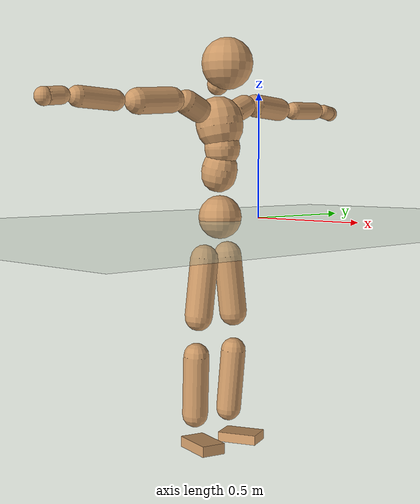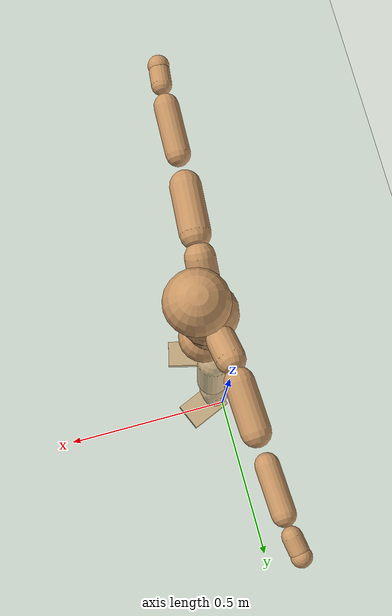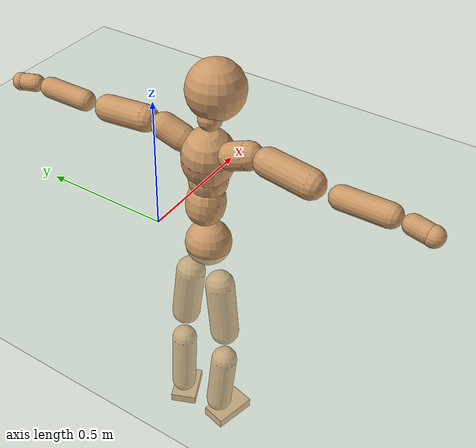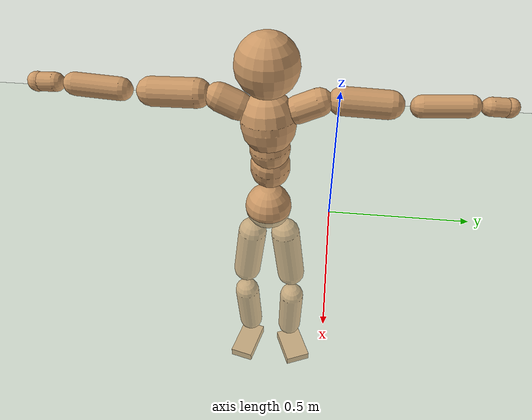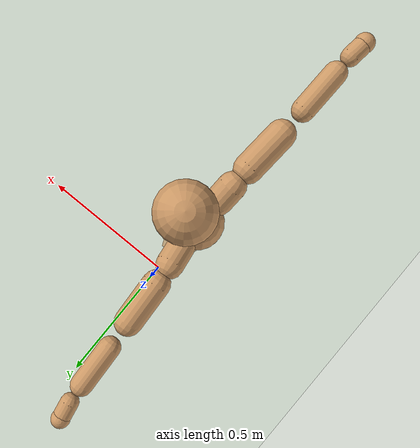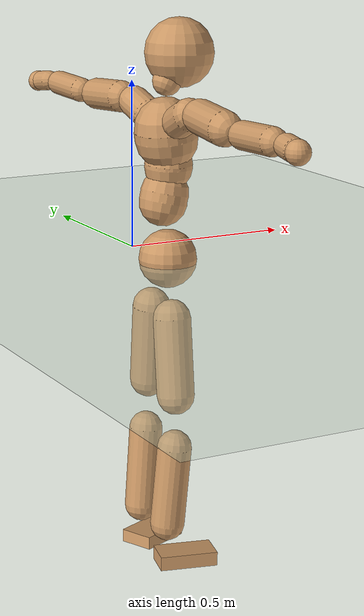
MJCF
<mujoco model="humanoid">
  <compiler coordinate="local" angle="radian"/>
  <default>
    <joint damping="0.0" armature="0.01" stiffness="0.0" limited="true"/>
    <geom conaffinity="1" condim="3" contype="7" margin="0.001" rgba="0.8 0.6 .4 1"/>
  </default>
  <asset>
    <texture type="skybox" builtin="gradient" rgb1=".4 .5 .6" rgb2="0 0 0" width="100" height="100"/>
    <texture builtin="flat" height="1278" mark="cross" markrgb="1 1 1" name="texgeom" random="0.01" rgb1="0.8 0.6 0.4" rgb2="0.8 0.6 0.4" type="cube" width="127"/>
    <texture builtin="checker" height="100" name="texplane" rgb1="0 0 0" rgb2="0.8 0.8 0.8" type="2d" width="100"/>
    <material name="MatPlane" reflectance="0.5" shininess="1" specular="1" texrepeat="60 60" texture="texplane"/>
    <material name="geom" texture="texgeom" texuniform="true"/>
  </asset>
  <worldbody>
    <light cutoff="100" diffuse="1 1 1" dir="-0 0 -1.3" directional="true" exponent="1" pos="0 0 1.3" specular=".1 .1 .1"/>
    <geom conaffinity="1" condim="3" name="floor" pos="0 0 0" rgba="0.8 0.9 0.8 1" size="100 100 .2" type="plane" material="MatPlane"/>
    <body name="Pelvis" pos="0.0017 -0.2226 0.0114">
      <freejoint name="Pelvis"/>
      <geom type="sphere" contype="1" conaffinity="1" density="500" size="0.0847" pos="0.0000 0.0000 0.0000" name="Pelvis"/>
      <body name="L_Hip" pos="-0.0225 0.0537 -0.0774">
        <joint name="L_Hip_x" type="hinge" pos="0 0 0" axis="1 0 0" stiffness="800" damping="80" armature="0.02" range="-180.0000 180.0000"/>
        <joint name="L_Hip_y" type="hinge" pos="0 0 0" axis="0 1 0" stiffness="800" damping="80" armature="0.02" range="-180.0000 180.0000"/>
        <joint name="L_Hip_z" type="hinge" pos="0 0 0" axis="0 0 1" stiffness="800" damping="80" armature="0.02" range="-180.0000 180.0000"/>
        <geom type="capsule" contype="1" conaffinity="1" density="500" fromto="0.0014 0.0093 -0.0767 0.0054 0.0371 -0.3069" size="0.0549" name="L_Hip"/>
        <body name="L_Knee" pos="0.0068 0.0464 -0.3837">
          <joint name="L_Knee_x" type="hinge" pos="0 0 0" axis="1 0 0" stiffness="800" damping="80" armature="0.02" range="-180.0000 180.0000"/>
          <joint name="L_Knee_y" type="hinge" pos="0 0 0" axis="0 1 0" stiffness="800" damping="80" armature="0.02" range="-180.0000 180.0000"/>
          <joint name="L_Knee_z" type="hinge" pos="0 0 0" axis="0 0 1" stiffness="800" damping="80" armature="0.02" range="-180.0000 180.0000"/>
          <geom type="capsule" contype="1" conaffinity="1" density="500" fromto="-0.0066 -0.0023 -0.0801 -0.0265 -0.0092 -0.3204" size="0.0496" name="L_Knee"/>
          <body name="L_Ankle" pos="-0.0331 -0.0115 -0.4005">
            <joint name="L_Ankle_x" type="hinge" pos="0 0 0" axis="1 0 0" stiffness="800" damping="80" armature="0.02" range="-180.0000 180.0000"/>
            <joint name="L_Ankle_y" type="hinge" pos="0 0 0" axis="0 1 0" stiffness="800" damping="80" armature="0.02" range="-180.0000 180.0000"/>
            <joint name="L_Ankle_z" type="hinge" pos="0 0 0" axis="0 0 1" stiffness="800" damping="80" armature="0.02" range="-180.0000 180.0000"/>
            <geom type="box" contype="1" conaffinity="1" density="500" pos="0.0563 0.0242 -0.0288" size="0.0789 0.0522 0.019" quat="0.9795 0.0000 0.0000 0.2012" name="L_Ankle"/>
            <body name="L_Toe" pos="0.1127 0.0483 -0.0576">
              <joint name="L_Toe_x" type="hinge" pos="0 0 0" axis="1 0 0" stiffness="500" damping="50" armature="0.02" range="-180.0000 180.0000"/>
              <joint name="L_Toe_y" type="hinge" pos="0 0 0" axis="0 1 0" stiffness="500" damping="50" armature="0.02" range="-180.0000 180.0000"/>
              <joint name="L_Toe_z" type="hinge" pos="0 0 0" axis="0 0 1" stiffness="500" damping="50" armature="0.02" range="-180.0000 180.0000"/>
              <geom type="box" contype="1" conaffinity="1" density="500" pos="0.0000 0.0000 0.0308" size="0.001 0.0024 0.001" quat="0.9787 0.0000 0.0000 0.2053" name="L_Toe"/>
            </body>
          </body>
        </body>
      </body>
      <body name="R_Hip" pos="-0.0202 -0.0558 -0.0848">
        <joint name="R_Hip_x" type="hinge" pos="0 0 0" axis="1 0 0" stiffness="800" damping="80" armature="0.02" range="-180.0000 180.0000"/>
        <joint name="R_Hip_y" type="hinge" pos="0 0 0" axis="0 1 0" stiffness="800" damping="80" armature="0.02" range="-180.0000 180.0000"/>
        <joint name="R_Hip_z" type="hinge" pos="0 0 0" axis="0 0 1" stiffness="800" damping="80" armature="0.02" range="-180.0000 180.0000"/>
        <geom type="capsule" contype="1" conaffinity="1" density="500" fromto="-0.0008 -0.0094 -0.0752 -0.0033 -0.0375 -0.3009" size="0.0545" name="R_Hip"/>
        <body name="R_Knee" pos="-0.0041 -0.0468 -0.3761">
          <joint name="R_Knee_x" type="hinge" pos="0 0 0" axis="1 0 0" stiffness="800" damping="80" armature="0.02" range="-180.0000 180.0000"/>
          <joint name="R_Knee_y" type="hinge" pos="0 0 0" axis="0 1 0" stiffness="800" damping="80" armature="0.02" range="-180.0000 180.0000"/>
          <joint name="R_Knee_z" type="hinge" pos="0 0 0" axis="0 0 1" stiffness="800" damping="80" armature="0.02" range="-180.0000 180.0000"/>
          <geom type="capsule" contype="1" conaffinity="1" density="500" fromto="-0.0061 0.0033 -0.0788 -0.0242 0.0130 -0.3151" size="0.0506" name="R_Knee"/>
          <body name="R_Ankle" pos="-0.0303 0.0163 -0.3939">
            <joint name="R_Ankle_x" type="hinge" pos="0 0 0" axis="1 0 0" stiffness="800" damping="80" armature="0.02" range="-180.0000 180.0000"/>
            <joint name="R_Ankle_y" type="hinge" pos="0 0 0" axis="0 1 0" stiffness="800" damping="80" armature="0.02" range="-180.0000 180.0000"/>
            <joint name="R_Ankle_z" type="hinge" pos="0 0 0" axis="0 0 1" stiffness="800" damping="80" armature="0.02" range="-180.0000 180.0000"/>
            <geom type="box" contype="1" conaffinity="1" density="500" pos="0.0605 -0.0147 -0.0309" size="0.0854 0.048 0.0207" quat="0.9929 0.0000 0.0000 -0.1186" name="R_Ankle"/>
            <body name="R_Toe" pos="0.121 -0.0293 -0.0618">
              <joint name="R_Toe_x" type="hinge" pos="0 0 0" axis="1 0 0" stiffness="500" damping="50" armature="0.02" range="-180.0000 180.0000"/>
              <joint name="R_Toe_y" type="hinge" pos="0 0 0" axis="0 1 0" stiffness="500" damping="50" armature="0.02" range="-180.0000 180.0000"/>
              <joint name="R_Toe_z" type="hinge" pos="0 0 0" axis="0 0 1" stiffness="500" damping="50" armature="0.02" range="-180.0000 180.0000"/>
              <geom type="box" contype="1" conaffinity="1" density="500" pos="0.0000 0.0000 0.0329" size="0.0009 0.0023 0.0011" quat="0.9940 0.0000 0.0000 -0.1091" name="R_Toe"/>
            </body>
          </body>
        </body>
      </body>
      <body name="Torso" pos="-0.025 0.0041 0.1134">
        <joint name="Torso_x" type="hinge" pos="0 0 0" axis="1 0 0" stiffness="1000" damping="100" armature="0.02" range="-180.0000 180.0000"/>
        <joint name="Torso_y" type="hinge" pos="0 0 0" axis="0 1 0" stiffness="1000" damping="100" armature="0.02" range="-180.0000 180.0000"/>
        <joint name="Torso_z" type="hinge" pos="0 0 0" axis="0 0 1" stiffness="1000" damping="100" armature="0.02" range="-180.0000 180.0000"/>
        <geom type="capsule" contype="1" conaffinity="1" density="500" fromto="0.0182 0.0022 0.0781 0.0122 0.0014 0.0521" size="0.0696" name="Torso"/>
        <body name="Spine" pos="0.0304 0.0036 0.1301">
          <joint name="Spine_x" type="hinge" pos="0 0 0" axis="1 0 0" stiffness="1000" damping="100" armature="0.02" range="-180.0000 180.0000"/>
          <joint name="Spine_y" type="hinge" pos="0 0 0" axis="0 1 0" stiffness="1000" damping="100" armature="0.02" range="-180.0000 180.0000"/>
          <joint name="Spine_z" type="hinge" pos="0 0 0" axis="0 0 1" stiffness="1000" damping="100" armature="0.02" range="-180.0000 180.0000"/>
          <geom type="capsule" contype="1" conaffinity="1" density="500" fromto="0.0003 -0.0017 0.0312 0.0002 -0.0011 0.0208" size="0.0692" name="Spine"/>
          <body name="Chest" pos="0.0005 -0.0028 0.0519">
            <joint name="Chest_x" type="hinge" pos="0 0 0" axis="1 0 0" stiffness="1000" damping="100" armature="0.02" range="-180.0000 180.0000"/>
            <joint name="Chest_y" type="hinge" pos="0 0 0" axis="0 1 0" stiffness="1000" damping="100" armature="0.02" range="-180.0000 180.0000"/>
            <joint name="Chest_z" type="hinge" pos="0 0 0" axis="0 0 1" stiffness="1000" damping="100" armature="0.02" range="-180.0000 180.0000"/>
            <geom type="capsule" contype="1" conaffinity="1" density="500" fromto="-0.0127 -0.0054 0.0812 -0.0085 -0.0036 0.0541" size="0.0912" name="Chest"/>
            <body name="Neck" pos="-0.023 -0.0125 0.197">
              <joint name="Neck_x" type="hinge" pos="0 0 0" axis="1 0 0" stiffness="500" damping="50" armature="0.02" range="-180.0000 180.0000"/>
              <joint name="Neck_y" type="hinge" pos="0 0 0" axis="0 1 0" stiffness="500" damping="50" armature="0.02" range="-180.0000 180.0000"/>
              <joint name="Neck_z" type="hinge" pos="0 0 0" axis="0 0 1" stiffness="500" damping="50" armature="0.02" range="-180.0000 180.0000"/>
              <geom type="capsule" contype="1" conaffinity="1" density="500" fromto="0.0109 0.0019 0.0193 0.0435 0.0077 0.0772" size="0.0419" name="Neck"/>
              <body name="Head" pos="0.0543 0.0096 0.0965">
                <joint name="Head_x" type="hinge" pos="0 0 0" axis="1 0 0" stiffness="500" damping="50" armature="0.02" range="-180.0000 180.0000"/>
                <joint name="Head_y" type="hinge" pos="0 0 0" axis="0 1 0" stiffness="500" damping="50" armature="0.02" range="-180.0000 180.0000"/>
                <joint name="Head_z" type="hinge" pos="0 0 0" axis="0 0 1" stiffness="500" damping="50" armature="0.02" range="-180.0000 180.0000"/>
                <geom type="sphere" contype="1" conaffinity="1" density="500" size="0.0997" pos="0.0000 0.0000 0.0000" name="Head"/>
              </body>
            </body>
            <body name="L_Thorax" pos="-0.0192 0.0653 0.1041">
              <joint name="L_Thorax_x" type="hinge" pos="0 0 0" axis="1 0 0" stiffness="500" damping="50" armature="0.02" range="-180.0000 180.0000"/>
              <joint name="L_Thorax_y" type="hinge" pos="0 0 0" axis="0 1 0" stiffness="500" damping="50" armature="0.02" range="-180.0000 180.0000"/>
              <joint name="L_Thorax_z" type="hinge" pos="0 0 0" axis="0 0 1" stiffness="500" damping="50" armature="0.02" range="-180.0000 180.0000"/>
              <geom type="capsule" contype="1" conaffinity="1" density="500" fromto="-0.0029 0.0222 0.0090 -0.0116 0.0887 0.0358" size="0.046" name="L_Thorax"/>
              <body name="L_Shoulder" pos="-0.0145 0.1109 0.0448">
                <joint name="L_Shoulder_x" type="hinge" pos="0 0 0" axis="1 0 0" stiffness="500" damping="50" armature="0.02" range="-720.0000 720.0000"/>
                <joint name="L_Shoulder_y" type="hinge" pos="0 0 0" axis="0 1 0" stiffness="500" damping="50" armature="0.02" range="-720.0000 720.0000"/>
                <joint name="L_Shoulder_z" type="hinge" pos="0 0 0" axis="0 0 1" stiffness="500" damping="50" armature="0.02" range="-720.0000 720.0000"/>
                <geom type="capsule" contype="1" conaffinity="1" density="500" fromto="-0.0026 0.0501 -0.0031 -0.0106 0.2006 -0.0123" size="0.0464" name="L_Shoulder"/>
                <body name="L_Elbow" pos="-0.0132 0.2507 -0.0153">
                  <joint name="L_Elbow_x" type="hinge" pos="0 0 0" axis="1 0 0" stiffness="500" damping="50" armature="0.02" range="-720.0000 720.0000"/>
                  <joint name="L_Elbow_y" type="hinge" pos="0 0 0" axis="0 1 0" stiffness="500" damping="50" armature="0.02" range="-720.0000 720.0000"/>
                  <joint name="L_Elbow_z" type="hinge" pos="0 0 0" axis="0 0 1" stiffness="500" damping="50" armature="0.02" range="-720.0000 720.0000"/>
                  <geom type="capsule" contype="1" conaffinity="1" density="500" fromto="-0.0023 0.0491 0.0018 -0.0092 0.1965 0.0074" size="0.0367" name="L_Elbow"/>
                  <body name="L_Wrist" pos="-0.0116 0.2456 0.0092">
                    <joint name="L_Wrist_x" type="hinge" pos="0 0 0" axis="1 0 0" stiffness="300" damping="30" armature="0.02" range="-180.0000 180.0000"/>
                    <joint name="L_Wrist_y" type="hinge" pos="0 0 0" axis="0 1 0" stiffness="300" damping="30" armature="0.02" range="-180.0000 180.0000"/>
                    <joint name="L_Wrist_z" type="hinge" pos="0 0 0" axis="0 0 1" stiffness="300" damping="30" armature="0.02" range="-180.0000 180.0000"/>
                    <geom type="capsule" contype="1" conaffinity="1" density="500" fromto="-0.0028 0.0154 -0.0019 -0.0112 0.0618 -0.0075" size="0.0303" name="L_Wrist"/>
                    <body name="L_Hand" pos="-0.014 0.0772 -0.0094">
                      <joint name="L_Hand_x" type="hinge" pos="0 0 0" axis="1 0 0" stiffness="300" damping="30" armature="0.02" range="-180.0000 180.0000"/>
                      <joint name="L_Hand_y" type="hinge" pos="0 0 0" axis="0 1 0" stiffness="300" damping="30" armature="0.02" range="-180.0000 180.0000"/>
                      <joint name="L_Hand_z" type="hinge" pos="0 0 0" axis="0 0 1" stiffness="300" damping="30" armature="0.02" range="-180.0000 180.0000"/>
                      <geom type="sphere" contype="1" conaffinity="1" density="500" size="0.0317" pos="0.0000 0.0000 0.0000" name="L_Hand"/>
                    </body>
                  </body>
                </body>
              </body>
            </body>
            <body name="R_Thorax" pos="-0.0213 -0.0797 0.1049">
              <joint name="R_Thorax_x" type="hinge" pos="0 0 0" axis="1 0 0" stiffness="500" damping="50" armature="0.02" range="-180.0000 180.0000"/>
              <joint name="R_Thorax_y" type="hinge" pos="0 0 0" axis="0 1 0" stiffness="500" damping="50" armature="0.02" range="-180.0000 180.0000"/>
              <joint name="R_Thorax_z" type="hinge" pos="0 0 0" axis="0 0 1" stiffness="500" damping="50" armature="0.02" range="-180.0000 180.0000"/>
              <geom type="capsule" contype="1" conaffinity="1" density="500" fromto="-0.0010 -0.0211 0.0093 -0.0039 -0.0843 0.0372" size="0.0474" name="R_Thorax"/>
              <body name="R_Shoulder" pos="-0.0048 -0.1054 0.0465">
                <joint name="R_Shoulder_x" type="hinge" pos="0 0 0" axis="1 0 0" stiffness="500" damping="50" armature="0.02" range="-720.0000 720.0000"/>
                <joint name="R_Shoulder_y" type="hinge" pos="0 0 0" axis="0 1 0" stiffness="500" damping="50" armature="0.02" range="-720.0000 720.0000"/>
                <joint name="R_Shoulder_z" type="hinge" pos="0 0 0" axis="0 0 1" stiffness="500" damping="50" armature="0.02" range="-720.0000 720.0000"/>
                <geom type="capsule" contype="1" conaffinity="1" density="500" fromto="-0.0039 -0.0509 -0.0035 -0.0155 -0.2034 -0.0141" size="0.0488" name="R_Shoulder"/>
                <body name="R_Elbow" pos="-0.0194 -0.2543 -0.0177">
                  <joint name="R_Elbow_x" type="hinge" pos="0 0 0" axis="1 0 0" stiffness="500" damping="50" armature="0.02" range="-720.0000 720.0000"/>
                  <joint name="R_Elbow_y" type="hinge" pos="0 0 0" axis="0 1 0" stiffness="500" damping="50" armature="0.02" range="-720.0000 720.0000"/>
                  <joint name="R_Elbow_z" type="hinge" pos="0 0 0" axis="0 0 1" stiffness="500" damping="50" armature="0.02" range="-720.0000 720.0000"/>
                  <geom type="capsule" contype="1" conaffinity="1" density="500" fromto="-0.0015 -0.0516 0.0021 -0.0062 -0.2064 0.0085" size="0.0385" name="R_Elbow"/>
                  <body name="R_Wrist" pos="-0.0077 -0.258 0.0107">
                    <joint name="R_Wrist_x" type="hinge" pos="0 0 0" axis="1 0 0" stiffness="300" damping="30" armature="0.02" range="-180.0000 180.0000"/>
                    <joint name="R_Wrist_y" type="hinge" pos="0 0 0" axis="0 1 0" stiffness="300" damping="30" armature="0.02" range="-180.0000 180.0000"/>
                    <joint name="R_Wrist_z" type="hinge" pos="0 0 0" axis="0 0 1" stiffness="300" damping="30" armature="0.02" range="-180.0000 180.0000"/>
                    <geom type="capsule" contype="1" conaffinity="1" density="500" fromto="-0.0019 -0.0163 -0.0015 -0.0075 -0.0653 -0.0062" size="0.0319" name="R_Wrist"/>
                    <body name="R_Hand" pos="-0.0094 -0.0817 -0.0077">
                      <joint name="R_Hand_x" type="hinge" pos="0 0 0" axis="1 0 0" stiffness="300" damping="30" armature="0.02" range="-180.0000 180.0000"/>
                      <joint name="R_Hand_y" type="hinge" pos="0 0 0" axis="0 1 0" stiffness="300" damping="30" armature="0.02" range="-180.0000 180.0000"/>
                      <joint name="R_Hand_z" type="hinge" pos="0 0 0" axis="0 0 1" stiffness="300" damping="30" armature="0.02" range="-180.0000 180.0000"/>
                      <geom type="sphere" contype="1" conaffinity="1" density="500" size="0.0332" pos="0.0000 0.0000 0.0000" name="R_Hand"/>
                    </body>
                  </body>
                </body>
              </body>
            </body>
          </body>
        </body>
      </body>
    </body>
  </worldbody>
  <actuator>
    <motor name="L_Hip_x" joint="L_Hip_x" gear="500"/>
    <motor name="L_Hip_y" joint="L_Hip_y" gear="500"/>
    <motor name="L_Hip_z" joint="L_Hip_z" gear="500"/>
    <motor name="L_Knee_x" joint="L_Knee_x" gear="500"/>
    <motor name="L_Knee_y" joint="L_Knee_y" gear="500"/>
    <motor name="L_Knee_z" joint="L_Knee_z" gear="500"/>
    <motor name="L_Ankle_x" joint="L_Ankle_x" gear="500"/>
    <motor name="L_Ankle_y" joint="L_Ankle_y" gear="500"/>
    <motor name="L_Ankle_z" joint="L_Ankle_z" gear="500"/>
    <motor name="L_Toe_x" joint="L_Toe_x" gear="500"/>
    <motor name="L_Toe_y" joint="L_Toe_y" gear="500"/>
    <motor name="L_Toe_z" joint="L_Toe_z" gear="500"/>
    <motor name="R_Hip_x" joint="R_Hip_x" gear="500"/>
    <motor name="R_Hip_y" joint="R_Hip_y" gear="500"/>
    <motor name="R_Hip_z" joint="R_Hip_z" gear="500"/>
    <motor name="R_Knee_x" joint="R_Knee_x" gear="500"/>
    <motor name="R_Knee_y" joint="R_Knee_y" gear="500"/>
    <motor name="R_Knee_z" joint="R_Knee_z" gear="500"/>
    <motor name="R_Ankle_x" joint="R_Ankle_x" gear="500"/>
    <motor name="R_Ankle_y" joint="R_Ankle_y" gear="500"/>
    <motor name="R_Ankle_z" joint="R_Ankle_z" gear="500"/>
    <motor name="R_Toe_x" joint="R_Toe_x" gear="500"/>
    <motor name="R_Toe_y" joint="R_Toe_y" gear="500"/>
    <motor name="R_Toe_z" joint="R_Toe_z" gear="500"/>
    <motor name="Torso_x" joint="Torso_x" gear="500"/>
    <motor name="Torso_y" joint="Torso_y" gear="500"/>
    <motor name="Torso_z" joint="Torso_z" gear="500"/>
    <motor name="Spine_x" joint="Spine_x" gear="500"/>
    <motor name="Spine_y" joint="Spine_y" gear="500"/>
    <motor name="Spine_z" joint="Spine_z" gear="500"/>
    <motor name="Chest_x" joint="Chest_x" gear="500"/>
    <motor name="Chest_y" joint="Chest_y" gear="500"/>
    <motor name="Chest_z" joint="Chest_z" gear="500"/>
    <motor name="Neck_x" joint="Neck_x" gear="500"/>
    <motor name="Neck_y" joint="Neck_y" gear="500"/>
    <motor name="Neck_z" joint="Neck_z" gear="500"/>
    <motor name="Head_x" joint="Head_x" gear="500"/>
    <motor name="Head_y" joint="Head_y" gear="500"/>
    <motor name="Head_z" joint="Head_z" gear="500"/>
    <motor name="L_Thorax_x" joint="L_Thorax_x" gear="500"/>
    <motor name="L_Thorax_y" joint="L_Thorax_y" gear="500"/>
    <motor name="L_Thorax_z" joint="L_Thorax_z" gear="500"/>
    <motor name="L_Shoulder_x" joint="L_Shoulder_x" gear="500"/>
    <motor name="L_Shoulder_y" joint="L_Shoulder_y" gear="500"/>
    <motor name="L_Shoulder_z" joint="L_Shoulder_z" gear="500"/>
    <motor name="L_Elbow_x" joint="L_Elbow_x" gear="500"/>
    <motor name="L_Elbow_y" joint="L_Elbow_y" gear="500"/>
    <motor name="L_Elbow_z" joint="L_Elbow_z" gear="500"/>
    <motor name="L_Wrist_x" joint="L_Wrist_x" gear="500"/>
    <motor name="L_Wrist_y" joint="L_Wrist_y" gear="500"/>
    <motor name="L_Wrist_z" joint="L_Wrist_z" gear="500"/>
    <motor name="L_Hand_x" joint="L_Hand_x" gear="500"/>
    <motor name="L_Hand_y" joint="L_Hand_y" gear="500"/>
    <motor name="L_Hand_z" joint="L_Hand_z" gear="500"/>
    <motor name="R_Thorax_x" joint="R_Thorax_x" gear="500"/>
    <motor name="R_Thorax_y" joint="R_Thorax_y" gear="500"/>
    <motor name="R_Thorax_z" joint="R_Thorax_z" gear="500"/>
    <motor name="R_Shoulder_x" joint="R_Shoulder_x" gear="500"/>
    <motor name="R_Shoulder_y" joint="R_Shoulder_y" gear="500"/>
    <motor name="R_Shoulder_z" joint="R_Shoulder_z" gear="500"/>
    <motor name="R_Elbow_x" joint="R_Elbow_x" gear="500"/>
    <motor name="R_Elbow_y" joint="R_Elbow_y" gear="500"/>
    <motor name="R_Elbow_z" joint="R_Elbow_z" gear="500"/>
    <motor name="R_Wrist_x" joint="R_Wrist_x" gear="500"/>
    <motor name="R_Wrist_y" joint="R_Wrist_y" gear="500"/>
    <motor name="R_Wrist_z" joint="R_Wrist_z" gear="500"/>
    <motor name="R_Hand_x" joint="R_Hand_x" gear="500"/>
    <motor name="R_Hand_y" joint="R_Hand_y" gear="500"/>
    <motor name="R_Hand_z" joint="R_Hand_z" gear="500"/>
  </actuator>
  <contact>
    <exclude body1="Torso" body2="Chest"/>
    <exclude body1="Head" body2="Chest"/>
    <exclude body1="R_Knee" body2="R_Toe"/>
    <exclude body1="R_Knee" body2="L_Ankle"/>
    <exclude body1="R_Knee" body2="L_Toe"/>
    <exclude body1="L_Knee" body2="L_Toe"/>
    <exclude body1="L_Knee" body2="R_Ankle"/>
    <exclude body1="L_Knee" body2="R_Toe"/>
    <exclude body1="L_Shoulder" body2="Chest"/>
    <exclude body1="R_Shoulder" body2="Chest"/>
  </contact>
  <sensor/>
  <size njmax="700" nconmax="700"/>
</mujoco>
